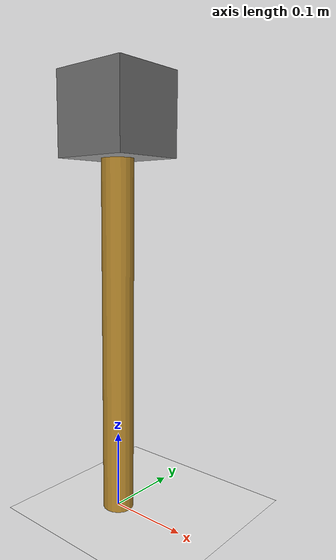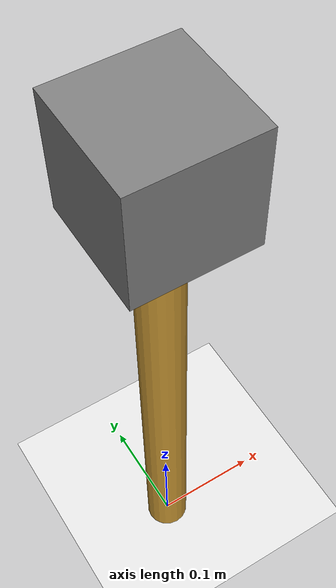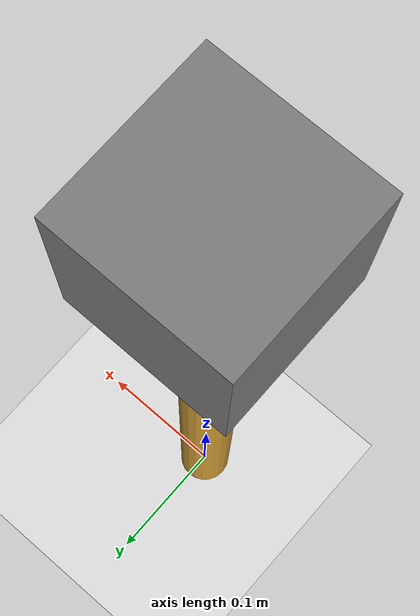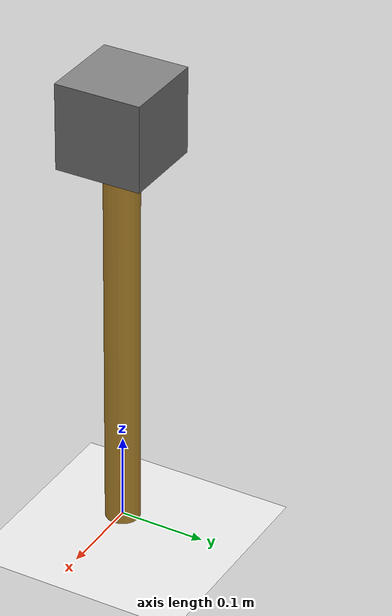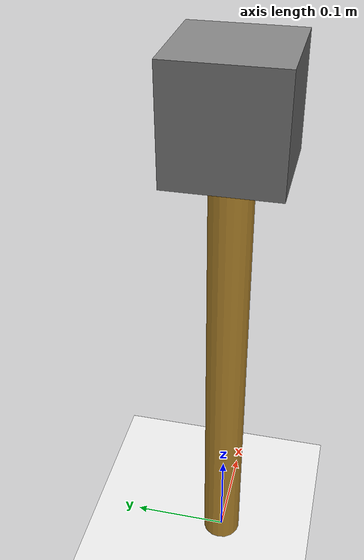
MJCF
<!-- MuJoCo model for Position+Velocity Servo Test -->
<!-- Demonstrates position+velocity control (like Dynamixel Profile Position mode) -->
<mujoco model="position_velocity_pendulum">
  <compiler angle="radian"/>

  <option gravity="0 0 -9.81" timestep="0.001"/>

  <worldbody>
    <light diffuse=".5 .5 .5" pos="0 0 3" dir="0 0 -1"/>
    <geom name="floor" type="plane" size="2 2 0.1" rgba="0.9 0.9 0.9 1"/>

    <body name="base_link" pos="0 0 0.5">
      <geom type="box" size="0.05 0.05 0.05" rgba="0.5 0.5 0.5 1"/>

      <body name="pendulum" pos="0 0 0">
        <joint name="joint1" type="hinge" axis="0 1 0" range="-3.14 3.14" damping="0.1"/>
        <geom type="capsule" fromto="0 0 0 0 0 -0.5" size="0.02" rgba="0.8 0.6 0.2 1" mass="1.0"/>
      </body>
    </body>
  </worldbody>

  <!-- Position+Velocity mode: separate actuators for PD control -->
  <!-- Control law: τ = kp*(pos_cmd - q) + kv*(vel_cmd - qd) -->
  <actuator>
    <!-- Position actuator: kp=100, kv=0 (no velocity damping) -->
    <position name="act_pos_joint1" joint="joint1"
              kp="100.0" kv="0.0"
              ctrlrange="-3.14 3.14" forcerange="-50 50"/>

    <!-- Velocity actuator: kv=10 (provides the D term) -->
    <velocity name="act_vel_joint1" joint="joint1"
              kv="10.0"
              ctrlrange="-10.0 10.0" forcerange="-50 50"/>
  </actuator>

  <keyframe>
    <key name="home" qpos="0"/>
    <key name="tilted" qpos="0.5"/>
    <key name="horizontal" qpos="1.57"/>
  </keyframe>
</mujoco>
